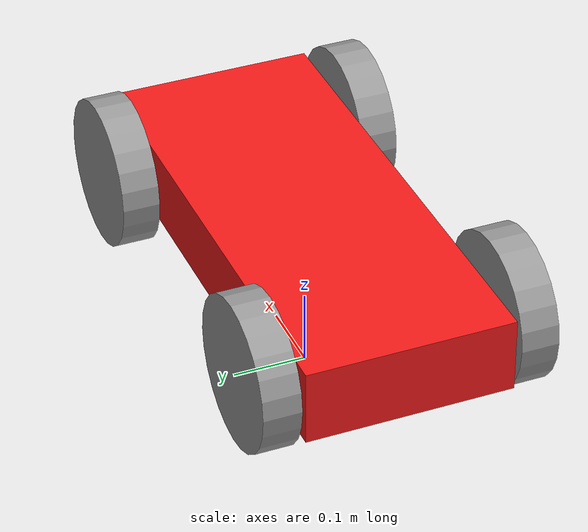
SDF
<?xml version='1.0'?>
<sdf version='1.7'>
  <model name='robot'>
    <link name='link_0'>
      <inertial>
        <mass>0.305572</mass>
        <inertia>
          <ixx>0.00217174</ixx>
          <ixy>0</ixy>
          <ixz>0</ixz>
          <iyy>0.0116265</iyy>
          <iyz>0</iyz>
          <izz>0.0132889</izz>
        </inertia>
        <pose>0 0 0 0 -0 0</pose>
      </inertial>
      <pose>-0 0 0.2 0 -0 0</pose>
      <gravity>1</gravity>
      <self_collide>0</self_collide>
      <kinematic>0</kinematic>
      <enable_wind>0</enable_wind>
      <visual name='visual'>
        <pose>0 0 0 0 -0 0</pose>
        <geometry>
          <box>
            <size>0.668265 0.274382 0.1</size>
          </box>
        </geometry>
        <material>
          <lighting>1</lighting>
          <script>
            <uri>file://media/materials/scripts/gazebo.material</uri>
            <name>Gazebo/Grey</name>
          </script>
          <shader type='pixel'>
            <normal_map>__default__</normal_map>
          </shader>
          <ambient>0.95 0.1 0.1 1</ambient>
          <diffuse>0.7 0.7 0.7 1</diffuse>
          <specular>0.5 0.01 0.01 1</specular>
          <emissive>0 0 0 1</emissive>
        </material>
        <transparency>0</transparency>
        <cast_shadows>1</cast_shadows>
      </visual>
      <collision name='collision'>
        <laser_retro>0</laser_retro>
        <max_contacts>10</max_contacts>
        <pose>0 0 0 0 -0 0</pose>
        <geometry>
          <box>
            <size>0.668265 0.274382 0.1</size>
          </box>
        </geometry>
        <surface>
          <friction>
            <ode>
              <mu>1</mu>
              <mu2>1</mu2>
              <fdir1>0 0 0</fdir1>
              <slip1>0</slip1>
              <slip2>0</slip2>
            </ode>
            <torsional>
              <coefficient>1</coefficient>
              <patch_radius>0</patch_radius>
              <surface_radius>0</surface_radius>
              <use_patch_radius>1</use_patch_radius>
              <ode>
                <slip>0</slip>
              </ode>
            </torsional>
          </friction>
          <bounce>
            <restitution_coefficient>0</restitution_coefficient>
            <threshold>1e+06</threshold>
          </bounce>
          <contact>
            <collide_without_contact>0</collide_without_contact>
            <collide_without_contact_bitmask>1</collide_without_contact_bitmask>
            <collide_bitmask>1</collide_bitmask>
            <ode>
              <soft_cfm>0</soft_cfm>
              <soft_erp>0.2</soft_erp>
              <kp>1e+13</kp>
              <kd>1</kd>
              <max_vel>0.01</max_vel>
              <min_depth>0</min_depth>
            </ode>
            <bullet>
              <split_impulse>1</split_impulse>
              <split_impulse_penetration_threshold>-0.01</split_impulse_penetration_threshold>
              <soft_cfm>0</soft_cfm>
              <soft_erp>0.2</soft_erp>
              <kp>1e+13</kp>
              <kd>1</kd>
            </bullet>
          </contact>
        </surface>
      </collision>
    </link>
    <link name='link_1'>
      <inertial>
        <mass>0.461439</mass>
        <inertia>
          <ixx>0.00280578</ixx>
          <ixy>0</ixy>
          <ixz>0</ixz>
          <iyy>0.00280578</iyy>
          <iyz>0</iyz>
          <izz>0.00506899</izz>
        </inertia>
        <pose>0 0 0 0 -0 0</pose>
      </inertial>
      <pose>0.237749 -0.164737 0.199994 1.5707 1e-06 -1e-06</pose>
      <gravity>1</gravity>
      <self_collide>0</self_collide>
      <kinematic>0</kinematic>
      <enable_wind>0</enable_wind>
      <visual name='visual'>
        <pose>0 0 0 0 -0 0</pose>
        <geometry>
          <cylinder>
            <radius>0.1</radius>
            <length>0.05</length>
          </cylinder>
        </geometry>
        <material>
          <lighting>1</lighting>
          <script>
            <uri>file://media/materials/scripts/gazebo.material</uri>
            <name>Gazebo/Grey</name>
          </script>
          <shader type='pixel'>
            <normal_map>__default__</normal_map>
          </shader>
          <ambient>0.3 0.3 0.3 1</ambient>
          <diffuse>0.7 0.7 0.7 1</diffuse>
          <specular>0.01 0.01 0.01 1</specular>
          <emissive>0 0 0 1</emissive>
        </material>
        <transparency>0</transparency>
        <cast_shadows>1</cast_shadows>
      </visual>
      <collision name='collision'>
        <laser_retro>0</laser_retro>
        <max_contacts>10</max_contacts>
        <pose>0 0 0 0 -0 0</pose>
        <geometry>
          <cylinder>
            <radius>0.1</radius>
            <length>0.05</length>
          </cylinder>
        </geometry>
        <surface>
          <friction>
            <ode>
              <mu>1</mu>
              <mu2>1</mu2>
              <fdir1>0 0 0</fdir1>
              <slip1>0</slip1>
              <slip2>0</slip2>
            </ode>
            <torsional>
              <coefficient>1</coefficient>
              <patch_radius>0</patch_radius>
              <surface_radius>0</surface_radius>
              <use_patch_radius>1</use_patch_radius>
              <ode>
                <slip>0</slip>
              </ode>
            </torsional>
          </friction>
          <bounce>
            <restitution_coefficient>0</restitution_coefficient>
            <threshold>1e+06</threshold>
          </bounce>
          <contact>
            <collide_without_contact>0</collide_without_contact>
            <collide_without_contact_bitmask>1</collide_without_contact_bitmask>
            <collide_bitmask>1</collide_bitmask>
            <ode>
              <soft_cfm>0</soft_cfm>
              <soft_erp>0.2</soft_erp>
              <kp>1e+13</kp>
              <kd>1</kd>
              <max_vel>0.01</max_vel>
              <min_depth>0</min_depth>
            </ode>
            <bullet>
              <split_impulse>1</split_impulse>
              <split_impulse_penetration_threshold>-0.01</split_impulse_penetration_threshold>
              <soft_cfm>0</soft_cfm>
              <soft_erp>0.2</soft_erp>
              <kp>1e+13</kp>
              <kd>1</kd>
            </bullet>
          </contact>
        </surface>
      </collision>
    </link>
    <link name='link_1_clone'>
      <inertial>
        <mass>0.461439</mass>
        <inertia>
          <ixx>0.00280578</ixx>
          <ixy>0</ixy>
          <ixz>0</ixz>
          <iyy>0.00280578</iyy>
          <iyz>0</iyz>
          <izz>0.00506899</izz>
        </inertia>
        <pose>0 0 0 0 -0 0</pose>
      </inertial>
      <pose>0.233378 0.17364 0.200019 1.57061 -0 0</pose>
      <gravity>1</gravity>
      <self_collide>0</self_collide>
      <kinematic>0</kinematic>
      <enable_wind>0</enable_wind>
      <visual name='visual'>
        <pose>0 0 0 0 -0 0</pose>
        <geometry>
          <cylinder>
            <radius>0.1</radius>
            <length>0.05</length>
          </cylinder>
        </geometry>
        <material>
          <lighting>1</lighting>
          <script>
            <uri>file://media/materials/scripts/gazebo.material</uri>
            <name>Gazebo/Grey</name>
          </script>
          <shader type='pixel'>
            <normal_map>__default__</normal_map>
          </shader>
          <ambient>0.3 0.3 0.3 1</ambient>
          <diffuse>0.7 0.7 0.7 1</diffuse>
          <specular>0.01 0.01 0.01 1</specular>
          <emissive>0 0 0 1</emissive>
        </material>
        <transparency>0</transparency>
        <cast_shadows>1</cast_shadows>
      </visual>
      <collision name='collision'>
        <laser_retro>0</laser_retro>
        <max_contacts>10</max_contacts>
        <pose>0 0 0 0 -0 0</pose>
        <geometry>
          <cylinder>
            <radius>0.1</radius>
            <length>0.05</length>
          </cylinder>
        </geometry>
        <surface>
          <friction>
            <ode>
              <mu>1</mu>
              <mu2>1</mu2>
              <fdir1>0 0 0</fdir1>
              <slip1>0</slip1>
              <slip2>0</slip2>
            </ode>
            <torsional>
              <coefficient>1</coefficient>
              <patch_radius>0</patch_radius>
              <surface_radius>0</surface_radius>
              <use_patch_radius>1</use_patch_radius>
              <ode>
                <slip>0</slip>
              </ode>
            </torsional>
          </friction>
          <bounce>
            <restitution_coefficient>0</restitution_coefficient>
            <threshold>1e+06</threshold>
          </bounce>
          <contact>
            <collide_without_contact>0</collide_without_contact>
            <collide_without_contact_bitmask>1</collide_without_contact_bitmask>
            <collide_bitmask>1</collide_bitmask>
            <ode>
              <soft_cfm>0</soft_cfm>
              <soft_erp>0.2</soft_erp>
              <kp>1e+13</kp>
              <kd>1</kd>
              <max_vel>0.01</max_vel>
              <min_depth>0</min_depth>
            </ode>
            <bullet>
              <split_impulse>1</split_impulse>
              <split_impulse_penetration_threshold>-0.01</split_impulse_penetration_threshold>
              <soft_cfm>0</soft_cfm>
              <soft_erp>0.2</soft_erp>
              <kp>1e+13</kp>
              <kd>1</kd>
            </bullet>
          </contact>
        </surface>
      </collision>
    </link>
    <link name='link_1_clone_clone'>
      <inertial>
        <mass>0.461439</mass>
        <inertia>
          <ixx>0.00280578</ixx>
          <ixy>0</ixy>
          <ixz>0</ixz>
          <iyy>0.00280578</iyy>
          <iyz>0</iyz>
          <izz>0.00506899</izz>
        </inertia>
        <pose>0 0 0 0 -0 0</pose>
      </inertial>
      <pose>-0.237741 0.167564 0.199983 1.57052 -0 0</pose>
      <gravity>1</gravity>
      <self_collide>0</self_collide>
      <kinematic>0</kinematic>
      <enable_wind>0</enable_wind>
      <visual name='visual'>
        <pose>0 0 0 0 -0 0</pose>
        <geometry>
          <cylinder>
            <radius>0.1</radius>
            <length>0.05</length>
          </cylinder>
        </geometry>
        <material>
          <lighting>1</lighting>
          <script>
            <uri>file://media/materials/scripts/gazebo.material</uri>
            <name>Gazebo/Grey</name>
          </script>
          <shader type='pixel'>
            <normal_map>__default__</normal_map>
          </shader>
          <ambient>0.3 0.3 0.3 1</ambient>
          <diffuse>0.7 0.7 0.7 1</diffuse>
          <specular>0.01 0.01 0.01 1</specular>
          <emissive>0 0 0 1</emissive>
        </material>
        <transparency>0</transparency>
        <cast_shadows>1</cast_shadows>
      </visual>
      <collision name='collision'>
        <laser_retro>0</laser_retro>
        <max_contacts>10</max_contacts>
        <pose>0 0 0 0 -0 0</pose>
        <geometry>
          <cylinder>
            <radius>0.1</radius>
            <length>0.05</length>
          </cylinder>
        </geometry>
        <surface>
          <friction>
            <ode>
              <mu>1</mu>
              <mu2>1</mu2>
              <fdir1>0 0 0</fdir1>
              <slip1>0</slip1>
              <slip2>0</slip2>
            </ode>
            <torsional>
              <coefficient>1</coefficient>
              <patch_radius>0</patch_radius>
              <surface_radius>0</surface_radius>
              <use_patch_radius>1</use_patch_radius>
              <ode>
                <slip>0</slip>
              </ode>
            </torsional>
          </friction>
          <bounce>
            <restitution_coefficient>0</restitution_coefficient>
            <threshold>1e+06</threshold>
          </bounce>
          <contact>
            <collide_without_contact>0</collide_without_contact>
            <collide_without_contact_bitmask>1</collide_without_contact_bitmask>
            <collide_bitmask>1</collide_bitmask>
            <ode>
              <soft_cfm>0</soft_cfm>
              <soft_erp>0.2</soft_erp>
              <kp>1e+13</kp>
              <kd>1</kd>
              <max_vel>0.01</max_vel>
              <min_depth>0</min_depth>
            </ode>
            <bullet>
              <split_impulse>1</split_impulse>
              <split_impulse_penetration_threshold>-0.01</split_impulse_penetration_threshold>
              <soft_cfm>0</soft_cfm>
              <soft_erp>0.2</soft_erp>
              <kp>1e+13</kp>
              <kd>1</kd>
            </bullet>
          </contact>
        </surface>
      </collision>
    </link>
    <link name='link_1_clone_clone_0'>
      <inertial>
        <mass>0.461439</mass>
        <inertia>
          <ixx>0.00280578</ixx>
          <ixy>0</ixy>
          <ixz>0</ixz>
          <iyy>0.00280578</iyy>
          <iyz>0</iyz>
          <izz>0.00506899</izz>
        </inertia>
        <pose>0 0 0 0 -0 0</pose>
      </inertial>
      <pose>-0.23337 -0.170841 0.199985 1.57052 -0 0</pose>
      <gravity>1</gravity>
      <self_collide>0</self_collide>
      <kinematic>0</kinematic>
      <enable_wind>0</enable_wind>
      <visual name='visual'>
        <pose>0 0 0 0 -0 0</pose>
        <geometry>
          <cylinder>
            <radius>0.1</radius>
            <length>0.05</length>
          </cylinder>
        </geometry>
        <material>
          <lighting>1</lighting>
          <script>
            <uri>file://media/materials/scripts/gazebo.material</uri>
            <name>Gazebo/Grey</name>
          </script>
          <shader type='pixel'>
            <normal_map>__default__</normal_map>
          </shader>
          <ambient>0.3 0.3 0.3 1</ambient>
          <diffuse>0.7 0.7 0.7 1</diffuse>
          <specular>0.01 0.01 0.01 1</specular>
          <emissive>0 0 0 1</emissive>
        </material>
        <transparency>0</transparency>
        <cast_shadows>1</cast_shadows>
      </visual>
      <collision name='collision'>
        <laser_retro>0</laser_retro>
        <max_contacts>10</max_contacts>
        <pose>0 0 0 0 -0 0</pose>
        <geometry>
          <cylinder>
            <radius>0.1</radius>
            <length>0.05</length>
          </cylinder>
        </geometry>
        <surface>
          <friction>
            <ode>
              <mu>1</mu>
              <mu2>1</mu2>
              <fdir1>0 0 0</fdir1>
              <slip1>0</slip1>
              <slip2>0</slip2>
            </ode>
            <torsional>
              <coefficient>1</coefficient>
              <patch_radius>0</patch_radius>
              <surface_radius>0</surface_radius>
              <use_patch_radius>1</use_patch_radius>
              <ode>
                <slip>0</slip>
              </ode>
            </torsional>
          </friction>
          <bounce>
            <restitution_coefficient>0</restitution_coefficient>
            <threshold>1e+06</threshold>
          </bounce>
          <contact>
            <collide_without_contact>0</collide_without_contact>
            <collide_without_contact_bitmask>1</collide_without_contact_bitmask>
            <collide_bitmask>1</collide_bitmask>
            <ode>
              <soft_cfm>0</soft_cfm>
              <soft_erp>0.2</soft_erp>
              <kp>1e+13</kp>
              <kd>1</kd>
              <max_vel>0.01</max_vel>
              <min_depth>0</min_depth>
            </ode>
            <bullet>
              <split_impulse>1</split_impulse>
              <split_impulse_penetration_threshold>-0.01</split_impulse_penetration_threshold>
              <soft_cfm>0</soft_cfm>
              <soft_erp>0.2</soft_erp>
              <kp>1e+13</kp>
              <kd>1</kd>
            </bullet>
          </contact>
        </surface>
      </collision>
    </link>
    <joint name='link_0_JOINT_0' type='revolute'>
      <parent>link_0</parent>
      <child>link_1_clone</child>
      <pose>0 0 0 0 -0 0</pose>
      <axis>
        <xyz>-0 -0 -1</xyz>
        <limit>
          <lower>-1.79769e+308</lower>
          <upper>1.79769e+308</upper>
          <effort>-1</effort>
          <velocity>-1</velocity>
        </limit>
        <dynamics>
          <spring_reference>0</spring_reference>
          <spring_stiffness>0</spring_stiffness>
          <damping>0</damping>
          <friction>0</friction>
        </dynamics>
      </axis>
      <physics>
        <ode>
          <limit>
            <cfm>0</cfm>
            <erp>0.2</erp>
          </limit>
          <suspension>
            <cfm>0</cfm>
            <erp>0.2</erp>
          </suspension>
        </ode>
      </physics>
    </joint>
    <joint name='link_0_JOINT_1' type='revolute'>
      <parent>link_0</parent>
      <child>link_1</child>
      <pose>0 0 0 0 -0 0</pose>
      <axis>
        <xyz>0 0 1</xyz>
        <limit>
          <lower>-1.79769e+308</lower>
          <upper>1.79769e+308</upper>
          <effort>-1</effort>
          <velocity>-1</velocity>
        </limit>
        <dynamics>
          <spring_reference>0</spring_reference>
          <spring_stiffness>0</spring_stiffness>
          <damping>0</damping>
          <friction>0</friction>
        </dynamics>
      </axis>
      <physics>
        <ode>
          <limit>
            <cfm>0</cfm>
            <erp>0.2</erp>
          </limit>
          <suspension>
            <cfm>0</cfm>
            <erp>0.2</erp>
          </suspension>
        </ode>
      </physics>
    </joint>
    <joint name='link_0_JOINT_2' type='revolute'>
      <parent>link_0</parent>
      <child>link_1_clone_clone</child>
      <pose>0 0 0 0 -0 0</pose>
      <axis>
        <xyz>-0 -0 -1</xyz>
        <limit>
          <lower>-1.79769e+308</lower>
          <upper>1.79769e+308</upper>
          <effort>-1</effort>
          <velocity>-1</velocity>
        </limit>
        <dynamics>
          <spring_reference>0</spring_reference>
          <spring_stiffness>0</spring_stiffness>
          <damping>0</damping>
          <friction>0</friction>
        </dynamics>
      </axis>
      <physics>
        <ode>
          <limit>
            <cfm>0</cfm>
            <erp>0.2</erp>
          </limit>
          <suspension>
            <cfm>0</cfm>
            <erp>0.2</erp>
          </suspension>
        </ode>
      </physics>
    </joint>
    <joint name='link_0_JOINT_3' type='revolute'>
      <parent>link_0</parent>
      <child>link_1_clone_clone_0</child>
      <pose>0 0 0 0 -0 0</pose>
      <axis>
        <xyz>0 0 1</xyz>
        <limit>
          <lower>-1.79769e+308</lower>
          <upper>1.79769e+308</upper>
          <effort>-1</effort>
          <velocity>-1</velocity>
        </limit>
        <dynamics>
          <spring_reference>0</spring_reference>
          <spring_stiffness>0</spring_stiffness>
          <damping>0</damping>
          <friction>0</friction>
        </dynamics>
      </axis>
      <physics>
        <ode>
          <limit>
            <cfm>0</cfm>
            <erp>0.2</erp>
          </limit>
          <suspension>
            <cfm>0</cfm>
            <erp>0.2</erp>
          </suspension>
        </ode>
      </physics>
    </joint>
    <static>0</static>
    <allow_auto_disable>1</allow_auto_disable>
  </model>
</sdf>
